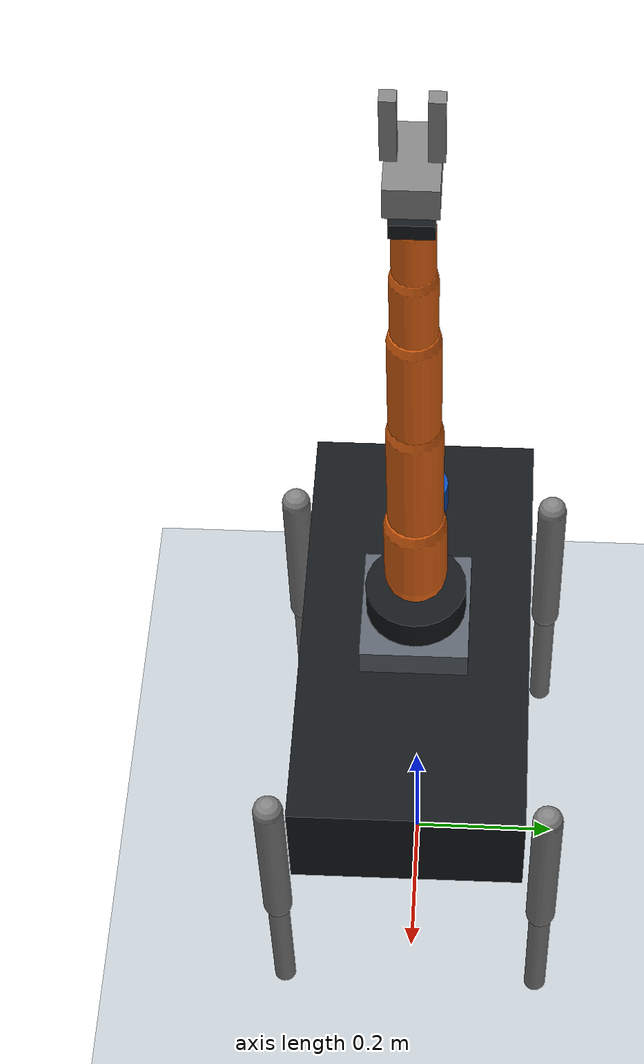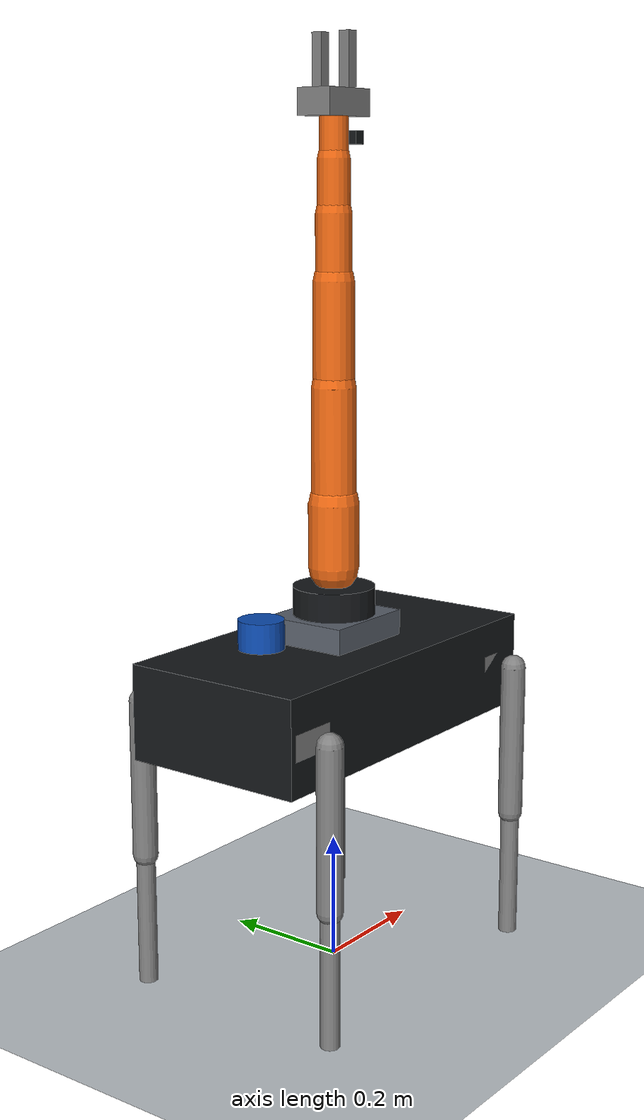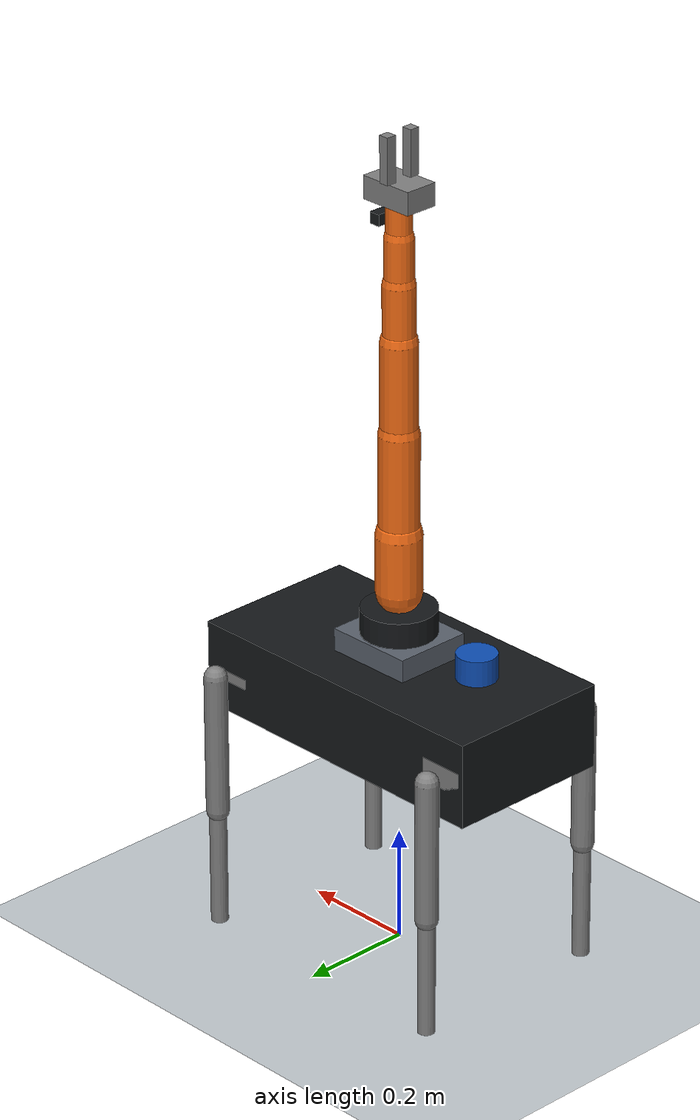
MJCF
<mujoco model="quadruped_arm_system">
  <compiler angle="radian" />
  <option timestep="0.002" gravity="0 0 -9.81" integrator="implicitfast" />
  <default>
    <joint damping="0.5" armature="0.01" limited="true" />
    <geom contype="1" conaffinity="1" friction="1 0.005 0.0001" />
  </default>
  <worldbody>
    <light pos="0 -2 4" dir="0 0 -1" />
    <geom name="ground" type="plane" size="10 10 .1" rgba=".75 .78 .8 1" />
    <camera name="overview" pos="1.5 -1.5 1.2" xyaxes=".707 .707 0 -.3 .3 .905" />
    <body name="base_link" pos="0 0 .46">
      <freejoint name="root" />
      <geom name="base_collision" type="box" size=".30 .15 .075" mass="6" rgba=".08 .09 .10 1" />
      <body name="lidar_link" pos="-.18 0 .12"><geom type="cylinder" size=".035 .0225" mass=".12" rgba=".05 .3 .7 1" /></body>

      <body name="fr_hip_link" pos="0.25 -0.13 0"><joint name="fr_hip_joint" axis="1 0 0" range="-.8 .8" /><geom type="box" size=".04 .02 .02" mass=".2" /><body name="fr_thigh_link" pos="0 -.05 0"><joint name="fr_thigh_joint" axis="0 1 0" range="-1 4" /><geom type="capsule" fromto="0 0 0 0 0 -.25" size=".02" mass=".7" /><body name="fr_calf_link" pos="0 0 -.25"><joint name="fr_calf_joint" axis="0 1 0" range="-2.8 2.8" /><geom type="capsule" fromto="0 0 0 0 0 -.25" size=".015" mass=".5" /><body name="fr_foot" pos="0 0 -.25"><geom name="fr_foot_collision" type="sphere" size=".02" mass=".1" /></body></body></body></body>
      <body name="fl_hip_link" pos="0.25 0.13 0"><joint name="fl_hip_joint" axis="1 0 0" range="-.8 .8" /><geom type="box" size=".04 .02 .02" mass=".2" /><body name="fl_thigh_link" pos="0 .05 0"><joint name="fl_thigh_joint" axis="0 1 0" range="-1 4" /><geom type="capsule" fromto="0 0 0 0 0 -.25" size=".02" mass=".7" /><body name="fl_calf_link" pos="0 0 -.25"><joint name="fl_calf_joint" axis="0 1 0" range="-2.8 2.8" /><geom type="capsule" fromto="0 0 0 0 0 -.25" size=".015" mass=".5" /><body name="fl_foot" pos="0 0 -.25"><geom name="fl_foot_collision" type="sphere" size=".02" mass=".1" /></body></body></body></body>
      <body name="rr_hip_link" pos="-0.25 -0.13 0"><joint name="rr_hip_joint" axis="1 0 0" range="-.8 .8" /><geom type="box" size=".04 .02 .02" mass=".2" /><body name="rr_thigh_link" pos="0 -.05 0"><joint name="rr_thigh_joint" axis="0 1 0" range="-1 4" /><geom type="capsule" fromto="0 0 0 0 0 -.25" size=".02" mass=".7" /><body name="rr_calf_link" pos="0 0 -.25"><joint name="rr_calf_joint" axis="0 1 0" range="-2.8 2.8" /><geom type="capsule" fromto="0 0 0 0 0 -.25" size=".015" mass=".5" /><body name="rr_foot" pos="0 0 -.25"><geom name="rr_foot_collision" type="sphere" size=".02" mass=".1" /></body></body></body></body>
      <body name="rl_hip_link" pos="-0.25 0.13 0"><joint name="rl_hip_joint" axis="1 0 0" range="-.8 .8" /><geom type="box" size=".04 .02 .02" mass=".2" /><body name="rl_thigh_link" pos="0 .05 0"><joint name="rl_thigh_joint" axis="0 1 0" range="-1 4" /><geom type="capsule" fromto="0 0 0 0 0 -.25" size=".02" mass=".7" /><body name="rl_calf_link" pos="0 0 -.25"><joint name="rl_calf_joint" axis="0 1 0" range="-2.8 2.8" /><geom type="capsule" fromto="0 0 0 0 0 -.25" size=".015" mass=".5" /><body name="rl_foot" pos="0 0 -.25"><geom name="rl_foot_collision" type="sphere" size=".02" mass=".1" /></body></body></body></body>

      <body name="arm_mount" pos="0 0 .095">
        <geom type="box" size=".08 .07 .02" mass=".30" rgba=".35 .38 .42 1" />
        <body name="arm_base_link" pos="0 0 .035">
          <geom type="cylinder" size=".065 .03" mass=".45" rgba=".08 .09 .10 1" />
          <body name="arm_link_1" pos="0 0 .06"><joint name="arm_joint_1" axis="0 0 1" range="-3.14159 3.14159" /><geom type="capsule" fromto="0 0 0 0 0 .10" size=".04" mass=".35" rgba=".95 .42 .08 1" />
            <body name="arm_link_2" pos="0 0 .10"><joint name="arm_joint_2" axis="0 1 0" range="-1.5708 1.5708" /><geom type="capsule" fromto="0 0 0 0 0 .18" size=".035" mass=".55" rgba=".95 .42 .08 1" />
              <body name="arm_link_3" pos="0 0 .18"><joint name="arm_joint_3" axis="0 1 0" range="-2.0944 2.0944" /><geom type="capsule" fromto="0 0 0 0 0 .16" size=".032" mass=".45" rgba=".95 .42 .08 1" />
                <body name="arm_link_4" pos="0 0 .16"><joint name="arm_joint_4" axis="1 0 0" range="-3.14159 3.14159" /><geom type="capsule" fromto="0 0 0 0 0 .10" size=".028" mass=".28" rgba=".95 .42 .08 1" />
                  <body name="arm_link_5" pos="0 0 .10"><joint name="arm_joint_5" axis="0 1 0" range="-1.5708 1.5708" /><geom type="capsule" fromto="0 0 0 0 0 .08" size=".025" mass=".20" rgba=".95 .42 .08 1" />
                    <body name="arm_link_6" pos="0 0 .08"><joint name="arm_joint_6" axis="0 0 1" range="-3.14159 3.14159" /><geom type="capsule" fromto="0 0 0 0 0 .06" size=".022" mass=".15" rgba=".95 .42 .08 1" />
                      <body name="camera_link" pos=".03 0 .03" quat=".7071067811865476 0 -.7071067811865476 0">
                        <geom type="box" size=".01 .025 .01" mass=".05" rgba=".08 .09 .10 1" />
                        <body name="camera_sensor_frame" euler="0 2.0943951023931953 0">

                          <body name="camera_optical_frame" quat=".5 -.5 .5 -.5">
                            <camera name="eye_in_hand" quat="0 1 0 0" fovy="46.82644889274108" resolution="320 240" />
                          </body>
                        </body>
                      </body>
                      <body name="arm_tool0" pos="0 0 .06"><geom type="sphere" size=".015" mass=".03" rgba=".05 .3 .7 1" />
                        <body name="gripper_base_link"><geom type="box" pos="0 0 .02" size=".05 .03 .02" mass=".16" />
                          <body name="gripper_left_finger" pos="0 .025 .04"><joint name="gripper_left_joint" type="slide" axis="0 1 0" range="0 .03" /><geom type="box" pos="0 0 .04" size=".009 .009 .04" mass=".06" /></body>
                          <body name="gripper_right_finger" pos="0 -.025 .04"><joint name="gripper_right_joint" type="slide" axis="0 -1 0" range="0 .03" /><geom type="box" pos="0 0 .04" size=".009 .009 .04" mass=".06" /></body>
                        </body>
                      </body>
                    </body>
                  </body>
                </body>
              </body>
            </body>
          </body>
        </body>
      </body>
    </body>
  </worldbody>
  <actuator>
    <position name="fr_hip_joint_motor" joint="fr_hip_joint" kp="200.0" kv="4.47213595499958" ctrlrange="-.8 .8" forcerange="-20 20" /><position name="fr_thigh_joint_motor" joint="fr_thigh_joint" kp="500.0" kv="8.94427190999916" ctrlrange="-1 4" forcerange="-30 30" /><position name="fr_calf_joint_motor" joint="fr_calf_joint" kp="750.0" kv="10.954451150103322" ctrlrange="-2.8 2.8" forcerange="-30 30" />
    <position name="fl_hip_joint_motor" joint="fl_hip_joint" kp="200.0" kv="4.47213595499958" ctrlrange="-.8 .8" forcerange="-20 20" /><position name="fl_thigh_joint_motor" joint="fl_thigh_joint" kp="500.0" kv="8.94427190999916" ctrlrange="-1 4" forcerange="-30 30" /><position name="fl_calf_joint_motor" joint="fl_calf_joint" kp="750.0" kv="10.954451150103322" ctrlrange="-2.8 2.8" forcerange="-30 30" />
    <position name="rr_hip_joint_motor" joint="rr_hip_joint" kp="200.0" kv="4.47213595499958" ctrlrange="-.8 .8" forcerange="-20 20" /><position name="rr_thigh_joint_motor" joint="rr_thigh_joint" kp="500.0" kv="8.94427190999916" ctrlrange="-1 4" forcerange="-30 30" /><position name="rr_calf_joint_motor" joint="rr_calf_joint" kp="750.0" kv="10.954451150103322" ctrlrange="-2.8 2.8" forcerange="-30 30" />
    <position name="rl_hip_joint_motor" joint="rl_hip_joint" kp="200.0" kv="4.47213595499958" ctrlrange="-.8 .8" forcerange="-20 20" /><position name="rl_thigh_joint_motor" joint="rl_thigh_joint" kp="500.0" kv="8.94427190999916" ctrlrange="-1 4" forcerange="-30 30" /><position name="rl_calf_joint_motor" joint="rl_calf_joint" kp="750.0" kv="10.954451150103322" ctrlrange="-2.8 2.8" forcerange="-30 30" />
    <position name="arm_joint_1_motor" joint="arm_joint_1" kp="120.0" kv="25.0" ctrlrange="-3.14159 3.14159" forcerange="-35 35" /><position name="arm_joint_2_motor" joint="arm_joint_2" kp="120.0" kv="25.0" ctrlrange="-1.5708 1.5708" forcerange="-35 35" /><position name="arm_joint_3_motor" joint="arm_joint_3" kp="105.0" kv="40.0" ctrlrange="-2.0944 2.0944" forcerange="-30 30" />
    <position name="arm_joint_4_motor" joint="arm_joint_4" kp="75.0" kv="15.0" ctrlrange="-3.14159 3.14159" forcerange="-20 20" /><position name="arm_joint_5_motor" joint="arm_joint_5" kp="67.5" kv="15.0" ctrlrange="-1.5708 1.5708" forcerange="-15 15" /><position name="arm_joint_6_motor" joint="arm_joint_6" kp="60.0" kv="10.0" ctrlrange="-3.14159 3.14159" forcerange="-12 12" />
    <position name="gripper_left_joint_motor" joint="gripper_left_joint" kp="100.0" kv="15.0" ctrlrange="0 .03" forcerange="-15 15" /><position name="gripper_right_joint_motor" joint="gripper_right_joint" kp="100.0" kv="15.0" ctrlrange="0 .03" forcerange="-15 15" />
  </actuator>
  <keyframe>
    <key name="home" qpos="0 0 .46 1 0 0 0 0 -.5 1 0 -.5 1 0 -.5 1 0 -.5 1 0 0 0 0 0 0 .015 .015" ctrl="0 -.5 1 0 -.5 1 0 -.5 1 0 -.5 1 0 0 0 0 0 0 .015 .015" />
  </keyframe>
</mujoco>
